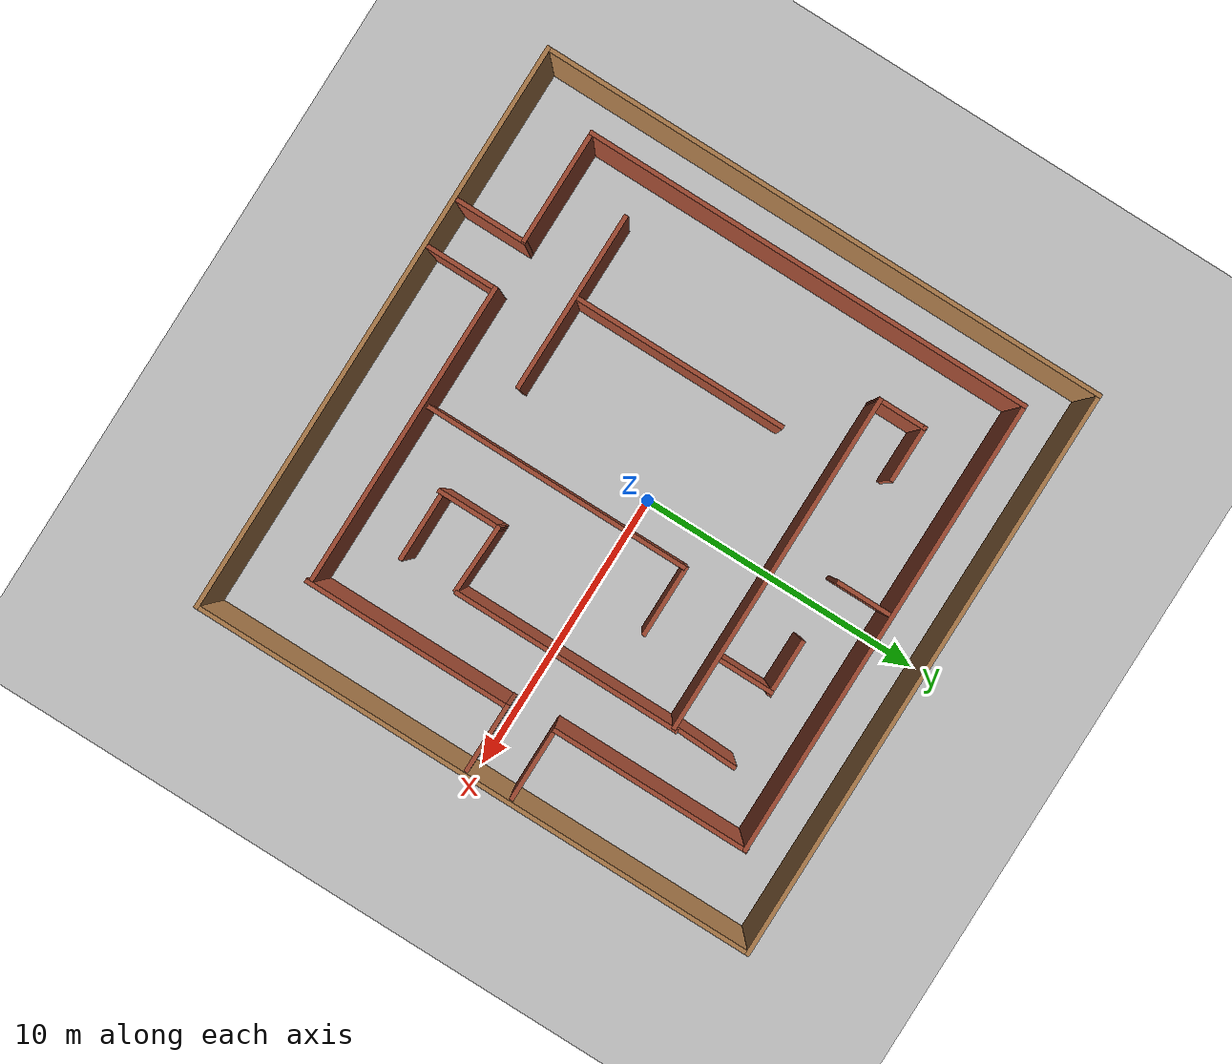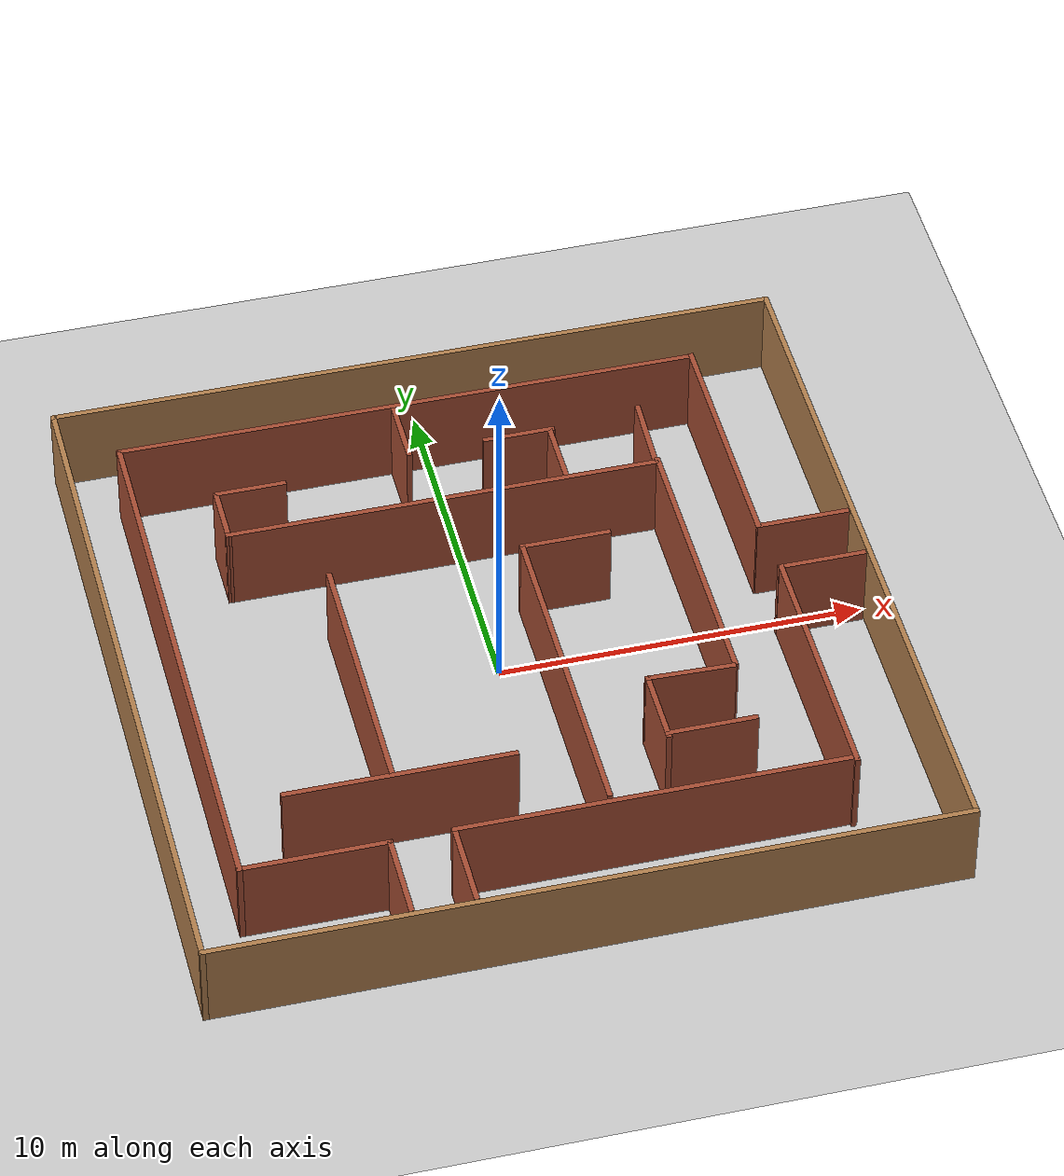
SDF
<?xml version='1.0'?>
<sdf version='1.7'>
  <world name='tb3_maze_world'>
    <include>
      <uri>model://sun</uri>
    </include>

    <include>
      <uri>model://ground_plane</uri>
    </include>

    <include>
      <uri>model://tb3_maze_world</uri>
      <pose>0 0 0 0 0 0</pose>
    </include>
  </world>
</sdf>
